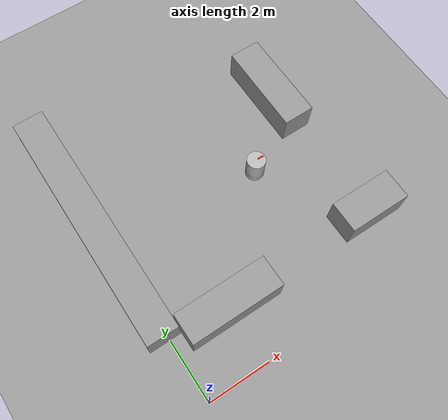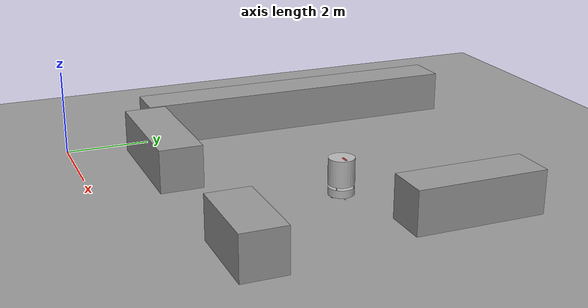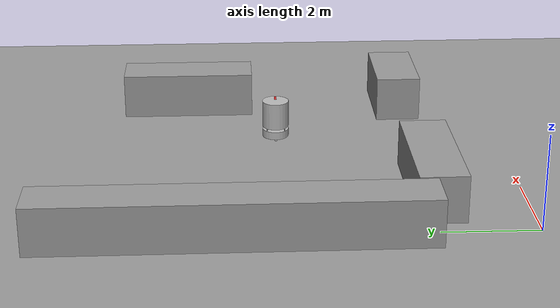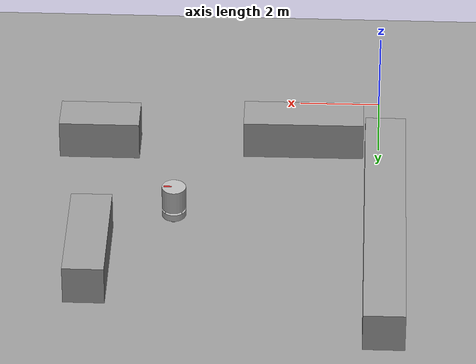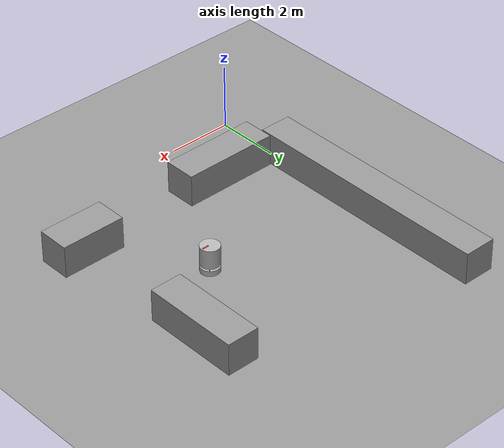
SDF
<sdf version="1.6">
 <world name="default">
  <light name="sun" type="directional">
   <pose>0 0 10 0 -0 0</pose>
   <diffuse>0.8 0.8 0.8 1</diffuse>
   <specular>0.2 0.2 0.2 1</specular>
   <attenuation>
    <range>1000</range>
    <constant>0.9</constant>
    <linear>0.01</linear>
    <quadratic>0.001</quadratic>
   </attenuation>
   <direction>0.5 0.1 -0.9</direction>
  </light>
  <scene><ambient>0.4 0.4 0.4 1</ambient><background>0.7 0.7 0.7 1</background><shadows>1</shadows></scene>
  <physics name="default_physics" default="0" type="ode">
   <max_step_size>0.01</max_step_size>
   <real_time_factor>1</real_time_factor>
   <real_time_update_rate>100</real_time_update_rate>
  </physics>
  <model name="ground_plane_0">
   <static>1</static>
   <link name="link">
    <collision name="collision">
     <geometry><plane><normal>0 0 1</normal><size>100 100</size></plane></geometry>
     <surface><friction><ode><mu>100</mu><mu2>50</mu2></ode></friction></surface>
    </collision>
    <visual name="visual">
     <cast_shadows>0</cast_shadows>
     <geometry><plane><normal>0 0 1</normal><size>100 100</size></plane></geometry>
     <material>
      <script><uri>file://media/materials/scripts/gazebo.material</uri><name>Gazebo/Grey</name></script>
     </material>
    </visual>
    <velocity_decay><linear>0</linear><angular>0</angular></velocity_decay>
   </link>
   <pose>0.497681 0 0 0 -0 0</pose>
  </model>
  <gravity>0 0 -9.8</gravity>
  <magnetic_field>6e-06 2.3e-05 -4.2e-05</magnetic_field>
  <atmosphere type="adiabatic"/>
  <spherical_coordinates>
   <surface_model>EARTH_WGS84</surface_model>
   <latitude_deg>0</latitude_deg>
   <longitude_deg>0</longitude_deg>
   <elevation>0</elevation>
   <heading_deg>0</heading_deg>
  </spherical_coordinates>
  <model name="karbot">
   <link name="base_footprint">
    <inertial>
     <pose>0 0 0.146419 0 -0 0</pose>
     <mass>1.6</mass>
     <inertia>
      <ixx>0.0387363</ixx>
      <ixy>0</ixy>
      <ixz>8.48879e-05</ixz>
      <iyy>0.0581823</iyy>
      <iyz>0</iyz>
      <izz>0.0687126</izz>
     </inertia>
    </inertial>
    <collision name="base_footprint_fixed_joint_lump__collison_base_link_collision">
     <pose>0 0 0.163988 0 -0 0</pose>
     <geometry><cylinder><length>0.176</length><radius>0.295051</radius></cylinder></geometry>
    </collision>
    <collision name="base_footprint_fixed_joint_lump__front_caster_collision_1">
     <pose>0.220488 0 0.035 0 -0 0</pose>
     <geometry><sphere><radius>0.025925</radius></sphere></geometry>
    </collision>
    <collision name="base_footprint_fixed_joint_lump__front_left_pillar_collision_2">
     <pose>-0.2 0.2 0.279488 0 -0 0</pose>
     <geometry><cylinder><length>0.075</length><radius>0.009</radius></cylinder></geometry>
    </collision>
    <collision name="base_footprint_fixed_joint_lump__front_right_pillar_collision_3">
     <pose>0.2 0.2 0.279488 0 -0 0</pose>
     <geometry><cylinder><length>0.075</length><radius>0.009</radius></cylinder></geometry>
    </collision>
    <collision name="base_footprint_fixed_joint_lump__rear_caster_collision_4">
     <pose>-0.220488 0 0.036925 0 -0 0</pose>
     <geometry><sphere><radius>0.025925</radius></sphere></geometry>
    </collision>
    <collision name="base_footprint_fixed_joint_lump__rear_left_pillar_collision_5">
     <pose>-0.2 -0.2 0.279488 0 -0 0</pose>
     <geometry><cylinder><length>0.075</length><radius>0.009</radius></cylinder></geometry>
    </collision>
    <collision name="base_footprint_fixed_joint_lump__rear_right_pillar_collision_6">
     <pose>0.2 -0.2 0.279488 0 -0 0</pose>
     <geometry><cylinder><length>0.075</length><radius>0.009</radius></cylinder></geometry>
    </collision>
    <collision name="base_footprint_fixed_joint_lump__base_scan_collision_7">
     <pose>0 0 0.279488 0 -0 0</pose>
     <geometry><cylinder><length>0.055</length><radius>0.0508</radius></cylinder></geometry>
    </collision>
    <collision name="base_footprint_fixed_joint_lump__collision_upper_chassis_collision_8">
     <pose>0 0 0.612679 0 -0 0</pose>
     <geometry><cylinder><length>0.601382</length><radius>0.295051</radius></cylinder></geometry>
    </collision>
    <visual name="base_footprint_fixed_joint_lump__base_link_visual">
     <pose>0 0 0.163988 0 -0 0</pose>
     <geometry><cylinder><length>0.176</length><radius>0.295051</radius></cylinder></geometry>
    </visual>
    <visual name="base_footprint_fixed_joint_lump__arrow_visual_1">
     <pose>0.15 0 0.92 0 -0 0</pose>
     <geometry><box><size>0.2 0.05 1e-05</size></box></geometry>
     <material>
      <script><name>Gazebo/Red</name><uri>file://media/materials/scripts/gazebo.material</uri></script>
     </material>
    </visual>
    <visual name="base_footprint_fixed_joint_lump__front_caster_visual_2">
     <pose>0.220488 0 0.035 0 -0 0</pose>
     <geometry><sphere><radius>0.025925</radius></sphere></geometry>
    </visual>
    <visual name="base_footprint_fixed_joint_lump__front_left_pillar_visual_3">
     <pose>-0.2 0.2 0.279488 0 -0 0</pose>
     <geometry><cylinder><length>0.075</length><radius>0.009</radius></cylinder></geometry>
    </visual>
    <visual name="base_footprint_fixed_joint_lump__front_right_pillar_visual_4">
     <pose>0.2 0.2 0.279488 0 -0 0</pose>
     <geometry><cylinder><length>0.075</length><radius>0.009</radius></cylinder></geometry>
    </visual>
    <visual name="base_footprint_fixed_joint_lump__rear_caster_visual_5">
     <pose>-0.220488 0 0.036925 0 -0 0</pose>
     <geometry><sphere><radius>0.026925</radius></sphere></geometry>
    </visual>
    <visual name="base_footprint_fixed_joint_lump__rear_left_pillar_visual_6">
     <pose>-0.2 -0.2 0.279488 0 -0 0</pose>
     <geometry><cylinder><length>0.075</length><radius>0.009</radius></cylinder></geometry>
    </visual>
    <visual name="base_footprint_fixed_joint_lump__rear_right_pillar_visual_7">
     <pose>0.2 -0.2 0.279488 0 -0 0</pose>
     <geometry><cylinder><length>0.075</length><radius>0.009</radius></cylinder></geometry>
    </visual>
    <visual name="base_footprint_fixed_joint_lump__base_scan_visual_8">
     <pose>0 0 0.279488 0 -0 0</pose>
     <geometry><cylinder><length>0.055</length><radius>0.0508</radius></cylinder></geometry>
     <material>
      <script><name>Gazebo/FlatBlack</name><uri>file://media/materials/scripts/gazebo.material</uri></script>
     </material>
    </visual>
    <visual name="base_footprint_fixed_joint_lump__upper_chassis_visual_9">
     <pose>0 0 0.612679 0 -0 0</pose>
     <geometry><cylinder><length>0.601382</length><radius>0.295051</radius></cylinder></geometry>
    </visual>
    <sensor name="lds_lfcd_sensor" type="ray">
     <visualize>0</visualize>
     <update_rate>5</update_rate>
     <ray>
      <scan>
       <horizontal>
        <samples>720</samples>
        <resolution>1</resolution>
        <min_angle>0</min_angle>
        <max_angle>6.28319</max_angle>
       </horizontal>
       <vertical><samples>1</samples><min_angle>0</min_angle><max_angle>0</max_angle></vertical>
      </scan>
      <range><min>0.3</min><max>10</max><resolution>0.015</resolution></range>
      <noise><type>gaussian</type><mean>0</mean><stddev>0.01</stddev></noise>
     </ray>
     <plugin name="gazebo_ros_lds_lfcd_controller" filename="libgazebo_ros_laser.so">
      <topicName>scan</topicName>
      <frameName>base_scan</frameName>
      <robotNamespace>/</robotNamespace>
     </plugin>
     <pose>0 0 0.279488 0 -0 0</pose>
    </sensor>
   </link>
   <link name="left_wheel">
    <pose>0 0.21395 0.112173 0 -0 0</pose>
    <inertial>
     <mass>0.3</mass>
     <inertia>
      <ixx>0.000799078</ixx>
      <ixy>0</ixy>
      <ixz>0</ixz>
      <iyy>0.000799078</iyy>
      <iyz>0</iyz>
      <izz>0.0015659</izz>
     </inertia>
    </inertial>
    <collision name="left_wheel_collision">
     <pose>0 0 0 3.14159 1.57079 -1.57089</pose>
     <geometry><cylinder><length>0.0254</length><radius>0.102173</radius></cylinder></geometry>
    </collision>
    <visual name="left_wheel_visual">
     <pose>0 0 0 3.14159 1.57079 -1.57089</pose>
     <geometry><cylinder><length>0.0254</length><radius>0.102173</radius></cylinder></geometry>
    </visual>
   </link>
   <joint name="left_wheel_hinge" type="revolute">
    <child>left_wheel</child>
    <parent>base_footprint</parent>
    <axis>
     <xyz>0 1 0</xyz>
     <limit><lower>-1e+16</lower><upper>1e+16</upper></limit>
     <dynamics><spring_reference>0</spring_reference><spring_stiffness>0</spring_stiffness></dynamics>
     <use_parent_model_frame>1</use_parent_model_frame>
    </axis>
   </joint>
   <link name="right_wheel">
    <pose>0 -0.21395 0.112173 0 -0 0</pose>
    <inertial>
     <mass>0.3</mass>
     <inertia>
      <ixx>0.000799078</ixx>
      <ixy>0</ixy>
      <ixz>0</ixz>
      <iyy>0.000799078</iyy>
      <iyz>0</iyz>
      <izz>0.0015659</izz>
     </inertia>
    </inertial>
    <collision name="right_wheel_collision">
     <pose>0 0 0 3.14159 1.57079 -1.57089</pose>
     <geometry><cylinder><length>0.0254</length><radius>0.102173</radius></cylinder></geometry>
    </collision>
    <visual name="right_wheel_visual">
     <pose>0 0 0 3.14159 1.57079 -1.57089</pose>
     <geometry><cylinder><length>0.0254</length><radius>0.102173</radius></cylinder></geometry>
    </visual>
   </link>
   <joint name="right_wheel_hinge" type="revolute">
    <child>right_wheel</child>
    <parent>base_footprint</parent>
    <axis>
     <xyz>0 1 0</xyz>
     <limit><lower>-1e+16</lower><upper>1e+16</upper></limit>
     <dynamics><spring_reference>0</spring_reference><spring_stiffness>0</spring_stiffness></dynamics>
     <use_parent_model_frame>1</use_parent_model_frame>
    </axis>
   </joint>
   <static>0</static>
   <plugin name="differential_drive_controller" filename="libgazebo_ros_diff_drive.so">
    <legacyMode>0</legacyMode>
    <alwaysOn>1</alwaysOn>
    <updateRate>10</updateRate>
    <leftJoint>left_wheel_hinge</leftJoint>
    <rightJoint>right_wheel_hinge</rightJoint>
    <wheelSeparation>0.4</wheelSeparation>
    <wheelDiameter>0.2</wheelDiameter>
    <torque>5</torque>
    <commandTopic>cmd_vel</commandTopic>
    <odometryTopic>odom</odometryTopic>
    <odometryFrame>odom</odometryFrame>
    <robotBaseFrame>base_footprint</robotBaseFrame>
    <robotNamespace>/</robotNamespace>
   </plugin>
   <pose>5.00002 4.99996 -0.010037 -1.4e-05 -0.004365 0.000836</pose>
  </model>
  <model name="unit_box_14">
   <link name="link">
    <inertial>
     <mass>1</mass>
     <inertia>
      <ixx>0.166667</ixx>
      <ixy>0</ixy>
      <ixz>0</ixz>
      <iyy>0.166667</iyy>
      <iyz>0</iyz>
      <izz>0.166667</izz>
     </inertia>
    </inertial>
    <visual name="visual">
     <geometry><box><size>1 3 1</size></box></geometry>
     <material>
      <script><name>Gazebo/Grey</name><uri>file://media/materials/scripts/gazebo.material</uri></script>
      <shader type="pixel"><normal_map>__default__</normal_map></shader>
      <ambient>0.3 0.3 0.3 1</ambient>
      <diffuse>0.7 0.7 0.7 1</diffuse>
      <specular>0.01 0.01 0.01 1</specular>
      <emissive>0 0 0 1</emissive>
     </material>
    </visual>
    <collision name="collision">
     <geometry><box><size>1 3 1</size></box></geometry>
     <surface>
      <friction>
       <ode><mu>1</mu><mu2>1</mu2><fdir1>0 0 0</fdir1><slip1>0</slip1><slip2>0</slip2></ode>
       <torsional>
        <coefficient>1</coefficient>
        <patch_radius>0</patch_radius>
        <surface_radius>0</surface_radius>
        <use_patch_radius>1</use_patch_radius>
        <ode><slip>0</slip></ode>
       </torsional>
      </friction>
      <bounce><restitution_coefficient>0</restitution_coefficient><threshold>1e+06</threshold></bounce>
      <contact>
       <collide_without_contact>0</collide_without_contact>
       <collide_without_contact_bitmask>1</collide_without_contact_bitmask>
       <collide_bitmask>1</collide_bitmask>
       <ode>
        <soft_cfm>0</soft_cfm>
        <soft_erp>0.2</soft_erp>
        <kp>1e+13</kp>
        <kd>1</kd>
        <max_vel>0.01</max_vel>
        <min_depth>0</min_depth>
       </ode>
       <bullet>
        <split_impulse>1</split_impulse>
        <split_impulse_penetration_threshold>-0.01</split_impulse_penetration_threshold>
        <soft_cfm>0</soft_cfm>
        <soft_erp>0.2</soft_erp>
        <kp>1e+13</kp>
        <kd>1</kd>
       </bullet>
      </contact>
     </surface>
    </collision>
   </link>
   <static>0</static>
   <pose>6.96631 7.0007 0.5 0 -0 6.8e-05</pose>
  </model>
  <model name="unit_box_10">
   <link name="link">
    <inertial>
     <mass>1</mass>
     <inertia>
      <ixx>0.166667</ixx>
      <ixy>0</ixy>
      <ixz>0</ixz>
      <iyy>0.166667</iyy>
      <iyz>0</iyz>
      <izz>0.166667</izz>
     </inertia>
    </inertial>
    <visual name="visual">
     <geometry><box><size>2 1 1</size></box></geometry>
     <material>
      <script><name>Gazebo/Grey</name><uri>file://media/materials/scripts/gazebo.material</uri></script>
      <shader type="pixel"><normal_map>__default__</normal_map></shader>
      <ambient>0.3 0.3 0.3 1</ambient>
      <diffuse>0.7 0.7 0.7 1</diffuse>
      <specular>0.01 0.01 0.01 1</specular>
      <emissive>0 0 0 1</emissive>
     </material>
    </visual>
    <collision name="collision">
     <geometry><box><size>2 1 1</size></box></geometry>
     <surface>
      <friction>
       <ode><mu>1</mu><mu2>1</mu2><fdir1>0 0 0</fdir1><slip1>0</slip1><slip2>0</slip2></ode>
       <torsional>
        <coefficient>1</coefficient>
        <patch_radius>0</patch_radius>
        <surface_radius>0</surface_radius>
        <use_patch_radius>1</use_patch_radius>
        <ode><slip>0</slip></ode>
       </torsional>
      </friction>
      <bounce><restitution_coefficient>0</restitution_coefficient><threshold>1e+06</threshold></bounce>
      <contact>
       <collide_without_contact>0</collide_without_contact>
       <collide_without_contact_bitmask>1</collide_without_contact_bitmask>
       <collide_bitmask>1</collide_bitmask>
       <ode>
        <soft_cfm>0</soft_cfm>
        <soft_erp>0.2</soft_erp>
        <kp>1e+13</kp>
        <kd>1</kd>
        <max_vel>0.01</max_vel>
        <min_depth>0</min_depth>
       </ode>
       <bullet>
        <split_impulse>1</split_impulse>
        <split_impulse_penetration_threshold>-0.01</split_impulse_penetration_threshold>
        <soft_cfm>0</soft_cfm>
        <soft_erp>0.2</soft_erp>
        <kp>1e+13</kp>
        <kd>1</kd>
       </bullet>
      </contact>
     </surface>
    </collision>
   </link>
   <static>0</static>
   <pose>7 2.07202 0.499798 0.000404 2e-06 2e-06</pose>
  </model>
  <model name="unit_box_2">
   <link name="link">
    <inertial>
     <mass>1</mass>
     <inertia>
      <ixx>0.166667</ixx>
      <ixy>0</ixy>
      <ixz>0</ixz>
      <iyy>0.166667</iyy>
      <iyz>0</iyz>
      <izz>0.166667</izz>
     </inertia>
    </inertial>
    <visual name="visual">
     <geometry><box><size>1 8 1</size></box></geometry>
     <material>
      <script><name>Gazebo/Grey</name><uri>file://media/materials/scripts/gazebo.material</uri></script>
      <shader type="pixel"><normal_map>__default__</normal_map></shader>
      <ambient>0.3 0.3 0.3 1</ambient>
      <diffuse>0.7 0.7 0.7 1</diffuse>
      <specular>0.01 0.01 0.01 1</specular>
      <emissive>0 0 0 1</emissive>
     </material>
    </visual>
    <collision name="collision">
     <geometry><box><size>1 8 1</size></box></geometry>
     <surface>
      <friction>
       <ode><mu>1</mu><mu2>1</mu2><fdir1>0 0 0</fdir1><slip1>0</slip1><slip2>0</slip2></ode>
       <torsional>
        <coefficient>1</coefficient>
        <patch_radius>0</patch_radius>
        <surface_radius>0</surface_radius>
        <use_patch_radius>1</use_patch_radius>
        <ode><slip>0</slip></ode>
       </torsional>
      </friction>
      <bounce><restitution_coefficient>0</restitution_coefficient><threshold>1e+06</threshold></bounce>
      <contact>
       <collide_without_contact>0</collide_without_contact>
       <collide_without_contact_bitmask>1</collide_without_contact_bitmask>
       <collide_bitmask>1</collide_bitmask>
       <ode>
        <soft_cfm>0</soft_cfm>
        <soft_erp>0.2</soft_erp>
        <kp>1e+13</kp>
        <kd>1</kd>
        <max_vel>0.01</max_vel>
        <min_depth>0</min_depth>
       </ode>
       <bullet>
        <split_impulse>1</split_impulse>
        <split_impulse_penetration_threshold>-0.01</split_impulse_penetration_threshold>
        <soft_cfm>0</soft_cfm>
        <soft_erp>0.2</soft_erp>
        <kp>1e+13</kp>
        <kd>1</kd>
       </bullet>
      </contact>
     </surface>
    </collision>
   </link>
   <static>0</static>
   <pose>-0.148913 6.01291 0.5 0 -0 0</pose>
  </model>
  <model name="unit_box_0">
   <link name="link">
    <inertial>
     <mass>1</mass>
     <inertia>
      <ixx>0.166667</ixx>
      <ixy>0</ixy>
      <ixz>0</ixz>
      <iyy>0.166667</iyy>
      <iyz>0</iyz>
      <izz>0.166667</izz>
     </inertia>
    </inertial>
    <visual name="visual">
     <geometry><box><size>3 1 1</size></box></geometry>
     <material>
      <script><name>Gazebo/Grey</name><uri>file://media/materials/scripts/gazebo.material</uri></script>
      <shader type="pixel"><normal_map>__default__</normal_map></shader>
      <ambient>0.3 0.3 0.3 1</ambient>
      <diffuse>0.7 0.7 0.7 1</diffuse>
      <specular>0.01 0.01 0.01 1</specular>
      <emissive>0 0 0 1</emissive>
     </material>
    </visual>
    <collision name="collision">
     <geometry><box><size>3 1 1</size></box></geometry>
     <surface>
      <friction>
       <ode><mu>1</mu><mu2>1</mu2><fdir1>0 0 0</fdir1><slip1>0</slip1><slip2>0</slip2></ode>
       <torsional>
        <coefficient>1</coefficient>
        <patch_radius>0</patch_radius>
        <surface_radius>0</surface_radius>
        <use_patch_radius>1</use_patch_radius>
        <ode><slip>0</slip></ode>
       </torsional>
      </friction>
      <bounce><restitution_coefficient>0</restitution_coefficient><threshold>1e+06</threshold></bounce>
      <contact>
       <collide_without_contact>0</collide_without_contact>
       <collide_without_contact_bitmask>1</collide_without_contact_bitmask>
       <collide_bitmask>1</collide_bitmask>
       <ode>
        <soft_cfm>0</soft_cfm>
        <soft_erp>0.2</soft_erp>
        <kp>1e+13</kp>
        <kd>1</kd>
        <max_vel>0.01</max_vel>
        <min_depth>0</min_depth>
       </ode>
       <bullet>
        <split_impulse>1</split_impulse>
        <split_impulse_penetration_threshold>-0.01</split_impulse_penetration_threshold>
        <soft_cfm>0</soft_cfm>
        <soft_erp>0.2</soft_erp>
        <kp>1e+13</kp>
        <kd>1</kd>
       </bullet>
      </contact>
     </surface>
    </collision>
   </link>
   <static>0</static>
   <pose>1.89512 1.89525 0.5 0 -0 0.004576</pose>
  </model>
 </world>
</sdf>
